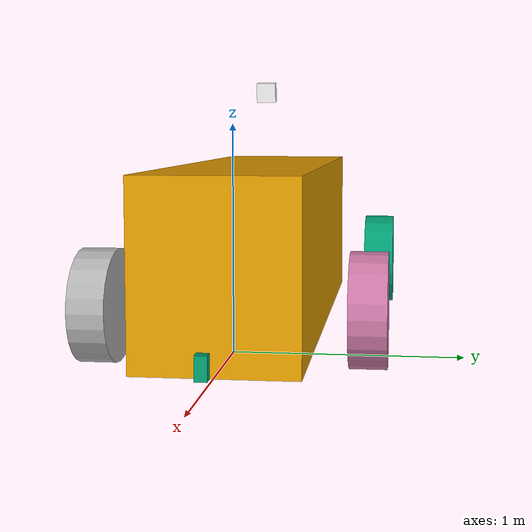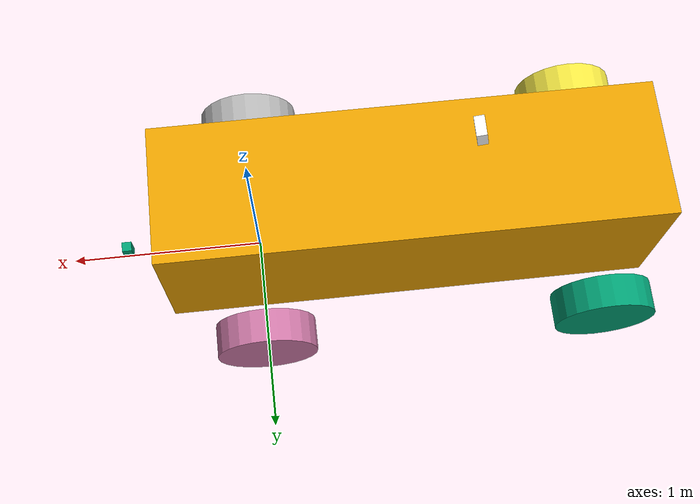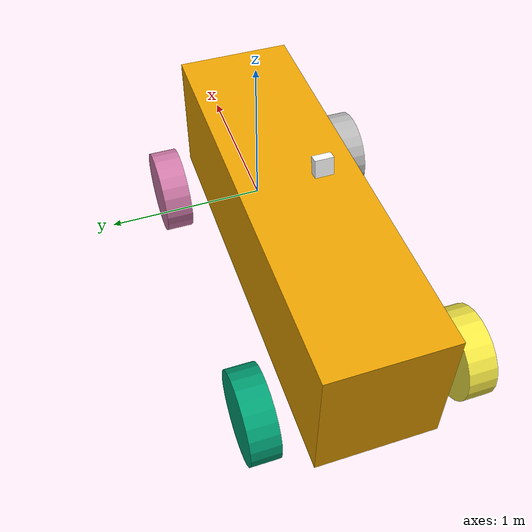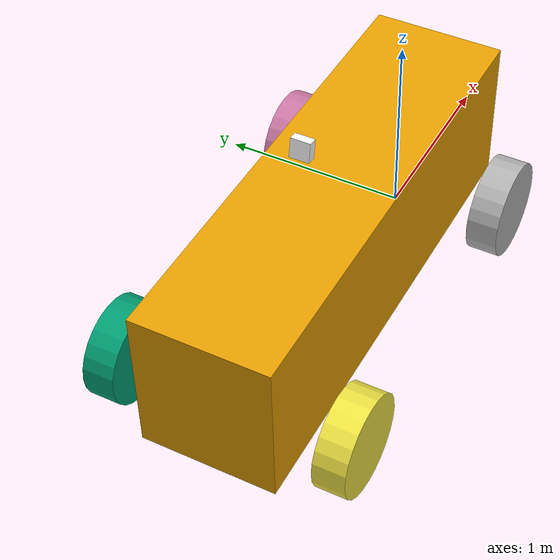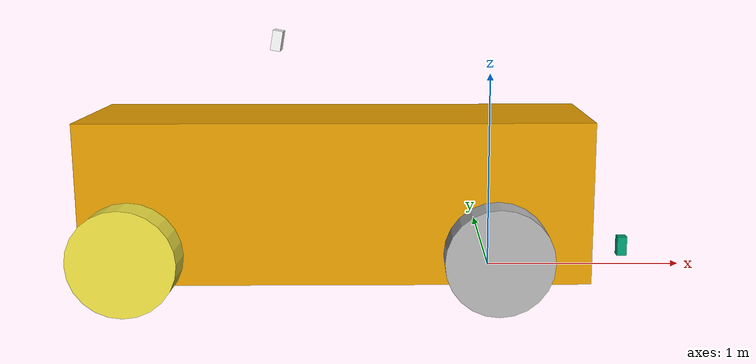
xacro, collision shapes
<?xml version="1.0"?>
<robot xmlns:xacro="http://www.ros.org/wiki/xacro" name="fs">

<!--    *Constants*    -->

<!-- These 2 values should always be modified in parallel with the ones in scripts/front_steer_akermann.py -->
<xacro:property name="axle_track" value="1.186" />
<xacro:property name="wheel_base" value="1.729" />

<xacro:property name="Chasis_mass" value="200" />
<xacro:property name="M_PI" value="3.1415926535897931" />
        <!--80 degrees fov, 21mm camera -->
<xacro:property name="Camera_field_of_view" value="80" />
<xacro:property name="Camera_image_width" value="640" />
<xacro:property name="Camera_image_height" value="480" />
        <!--In degrees measured from vertical -->
<xacro:property name="Camera_angle" value="10" />
        <!--Measured from base link, not from floor -->
<xacro:property name="Camera_height" value="1.17" />
<xacro:property name="Wheel_MU" value="0.9" />

<!--    *Colours*   -->

  <material name="grey">
    <color rgba="0.2 0.2 0.3 1"/>
  </material>

  <material name="white">
    <color rgba="1 1 1 1"/>
  </material>

  <material name="red">
    <color rgba="0.9 0.2 0.2 1"/>
  </material>

<!--    Base link (chassis) since Gazebo 9 this has no mass of its own, see dummy link -->

  <link name="base_link">
    <visual>
      <geometry>
        <!--box size="1.5 0.7 0.5"/-->
          <mesh filename="package://fs_simulator/meshes/Chasis.dae"/>
      </geometry>
    </visual>
    <collision>
      <origin rpy="0 0 0" xyz="-0.77 0 0.40"/>
      <geometry>
        <box size="2.5 0.7 0.8"/>
      </geometry>
    </collision>
  </link>
  <gazebo reference="base_link">
      <sensor type="contact" name="lside_bump_link">
        <always_on>true</always_on>
        <update_rate>50</update_rate>
        <contact>
          <collision>base_link_collision</collision>
          <!-- we have to add "_collision" to the colision link name due to a funny
          behaviour in urdf>sdf parser, Issue #113 in sdf bug tracker, major priority -->
        </contact>
        <plugin name="lside_bumper_plugin" filename="libgazebo_ros_bumper.so">
          <bumperTopicName>/fs/bumper</bumperTopicName>
          <frameName>world</frameName>
        </plugin>
      </sensor>
  </gazebo>

<!-- Dummy node, inertia for base link (chasis+batterypack+Motors) -->

<joint name="dummy_joint" type="fixed">
  <axis xyz="0 1 0" />
  <origin xyz="0 0 0" rpy="0 0 0"/>
  <parent link="base_link"/>
  <child link="dummy_link"/>
</joint>

<link name="dummy_link">
    <inertial>
      <origin rpy="0 0 0" xyz="-1.1 0 0.2"/>
      <mass value="${Chasis_mass}"/>
      <inertia ixx="11" ixy="0.0" ixz="0.0" iyy="106" iyz="0.0" izz="112"/>
    </inertial>
</link>

<!--    *Rear Wheels*   -->

<xacro:macro name="rWheel" params="prefix reflect">
  <link name="rear_${prefix}_wheel">
    <visual>
        <origin rpy="1.57075 0 0" xyz="0 0 0"/>
        <geometry>
          <!--cylinder length="0.164" radius="0.254"/-->
          <mesh filename="package://fs_simulator/meshes/tyre.dae"/>
        </geometry>
      <origin rpy="0 1.57075 0" xyz="0 0 -0.2"/>
    </visual>
    <collision>
      <origin rpy="1.57075 0 0" xyz="0 0 0"/>
      <geometry>
          <cylinder length="0.164" radius="0.254"/>
      </geometry>
    </collision>
    <inertial>
      <mass value="15.0"/>
      <inertia ixx="0.27" ixy="0.0" ixz="0.0" iyy="0.48" iyz="0.0" izz="0.27"/>
    </inertial>
  </link>

  <gazebo reference="rear_${prefix}_wheel">
      <mu1 value="${Wheel_MU}"/>
      <mu2 value="1.0"/>
      <kp value="10000000.0" />
      <kd value="1.0" />
  </gazebo>

  <joint name="base_to_${prefix}_wheel" type="continuous">
    <limit effort="2000" velocity="1000"/>
    <axis rpy="0 0 0" xyz="0 1 0"/>
    <parent link="base_link"/>
    <child link="rear_${prefix}_wheel"/>
    <origin rpy="0 0 0" xyz="${-wheel_base} ${reflect * axle_track /2} 0.2"/>
     <dynamics damping="0.3" friction="0.1"/>
  </joint>

  <transmission name="${prefix}_back_motor_trans">
    <type>transmission_interface/SimpleTransmission</type>
    <actuator name="${prefix}_back_motor_motor">
      <mechanicalReduction>1</mechanicalReduction>
    </actuator>
    <joint name="base_to_${prefix}_wheel">
      <hardwareInterface>hardware_interface/VelocityJointInterface</hardwareInterface>
    </joint>
  </transmission>
 </xacro:macro>
<xacro:rWheel prefix="right" reflect="1" />
<xacro:rWheel prefix="left" reflect="-1" />

<!--    Steer mechanism   -->

<xacro:macro name="steerMech" params="prefix reflect">

<link name="steer_${prefix}">
    <inertial>
        <mass value="2.0" />
        <inertia ixx="0.005" ixy="0.0" ixz="0.0"
            iyy="0.005" iyz="0.0"
            izz="0.005" />
    </inertial>
</link>

<joint name="base_to_${prefix}_front_steer" type="revolute">
    <axis xyz="0 0 1"/>
    <parent link="base_link"/>
    <child link="steer_${prefix}"/>
    <origin xyz="0 ${reflect * axle_track /2} 0"/>
    <dynamics damping="0.7" friction="0.7"/>
    <limit effort="173" lower="${-45*M_PI/180}" upper="${45*M_PI/180}" velocity="${M_PI*2*10}"/>
</joint>

<transmission name="${prefix}_front_steer_trans">
  <type>transmission_interface/SimpleTransmission</type>
  <actuator name="${prefix}_front_steer_motor">
    <mechanicalReduction>1</mechanicalReduction>
  </actuator>
  <joint name="base_to_${prefix}_front_steer">
    <hardwareInterface>hardware_interface/PositionJointInterface</hardwareInterface>
  </joint>
</transmission>

</xacro:macro>
<xacro:steerMech prefix="right" reflect="1" />
<xacro:steerMech prefix="left" reflect="-1" />

<!--  *Front Wheels*   -->

<xacro:macro name="fWheel" params="prefix reflect">

<link name="${prefix}_front_wheel">
  <visual>
      <origin rpy="1.57075 0 0" xyz="0 0 0"/>
      <geometry>
        <!--cylinder length="0.164" radius="0.254"/-->
        <mesh filename="package://fs_simulator/meshes/tyre.dae"/>
      </geometry>
  </visual>
  <collision>
    <origin rpy="1.57075 0 0" xyz="0 0 0"/>
    <geometry>
        <cylinder length="0.164" radius="0.254"/>
    </geometry>
  </collision>
  <inertial>
    <mass value="15.0"/>
    <inertia ixx="0.27" ixy="0.0" ixz="0.0" iyy="0.48" iyz="0.0" izz="0.27"/>
  </inertial>
</link>

<gazebo reference="${prefix}_front_wheel">
    <mu1 value="${Wheel_MU}"/>
    <mu2 value="1.0"/>
    <kp value="10000000.0" />
    <kd value="1.0" />
</gazebo>

<joint name="base_to_${prefix}_front_wheel" type="continuous">
  <axis  effort="1000.0" rpy="0 0 0" xyz="0 1 0"/>
  <parent link="steer_${prefix}"/>
  <child link="${prefix}_front_wheel"/>
  <origin rpy="0 0 0" xyz="0 0 0.2"/>
   <dynamics damping="0.3" friction="0.1"/>
</joint>

<transmission name="${prefix}_front_wheel_trans">
  <type>transmission_interface/SimpleTransmission</type>
  <actuator name="${prefix}_front_wheel_motor">
    <mechanicalReduction>1</mechanicalReduction>
  </actuator>
  <joint name="base_to_${prefix}_front_wheel">
    <hardwareInterface>hardware_interface/EffortJointInterface</hardwareInterface>
  </joint>
</transmission>

</xacro:macro>
<xacro:fWheel prefix="right" reflect="1" />
<xacro:fWheel prefix="left" reflect="-1" />

<!--    *Sensors*  -->

<!--    Camera 2d  -->

<joint name="camera_joint" type="fixed">
  <axis xyz="0 1 0"/>
  <origin xyz="-1.07 0 ${Camera_height}" rpy="0 ${Camera_angle*M_PI/180} 0"/>
  <parent link="base_link"/>
  <child link="camera_link"/>
</joint>

<link name="camera_link">
  <collision>
    <origin xyz="0 0 0" rpy="0 0 0"/>
    <geometry>
  <box size="0.05 0.1 0.1"/>
    </geometry>
  </collision>

  <visual>
    <origin xyz="0 0 0" rpy="0 0 0"/>
    <geometry>
  <box size="0.05 0.1 0.1"/>
    </geometry>
    <material name="white"/>
  </visual>

  <inertial>
    <mass value="1e-5" />
    <origin xyz="0 0 0" rpy="0 0 0"/>
    <inertia ixx="1e-6" ixy="0" ixz="0" iyy="1e-6" iyz="0" izz="1e-6" />
  </inertial>
</link>

  <gazebo reference="camera_link">
    <material>Gazebo/DarkGrey</material>
    <sensor type="camera" name="camera2d_1">
      <update_rate>10.0</update_rate>
      <camera name="head">
        <horizontal_fov>${Camera_field_of_view*M_PI/180}</horizontal_fov>
        <image>
          <width>${Camera_image_width}</width>
          <height>${Camera_image_height}</height>
          <format>R8G8B8</format>
        </image>
        <clip>
          <near>0.5</near>
          <far>50</far>
        </clip>
        <noise>
          <type>gaussian</type>
          <!-- Noise is sampled independently per pixel on each frame.
               That pixel's noise value is added to each of its color
               channels, which at that point lie in the range [0,1]. -->
          <mean>0.0</mean>
          <stddev>0.007</stddev>
        </noise>
      </camera>
      <plugin name="camera_controller" filename="libgazebo_ros_camera.so">
        <alwaysOn>true</alwaysOn>
        <updateRate>0.0</updateRate>
        <cameraName>fs/c1</cameraName>
        <imageTopicName>image_raw</imageTopicName>
        <cameraInfoTopicName>camera_info</cameraInfoTopicName>
        <frameName>camera_link</frameName>
        <hackBaseline>0.07</hackBaseline>
        <distortionK1>0.0</distortionK1>
        <distortionK2>0.0</distortionK2>
        <distortionK3>0.0</distortionK3>
        <distortionT1>0.0</distortionT1>
        <distortionT2>0.0</distortionT2>
      </plugin>
    </sensor>
  </gazebo>

<!--    Camera 3d  -->

<joint name="camera3d_joint" type="fixed">
  <axis xyz="0 1 0"/>
  <origin xyz="-1.07 0 ${Camera_height}" rpy="0 ${Camera_angle*M_PI/180} 0"/>
  <parent link="base_link"/>
  <child link="camera3d_link"/>
</joint>

<link name="camera3d_link">
  <collision>
    <origin xyz="0 0 0" rpy="0 0 0"/>
    <geometry>
  <box size="0.05 0.1 0.1"/>
    </geometry>
  </collision>

  <visual>
    <origin xyz="0 0 0" rpy="0 0 0"/>
    <geometry>
  <box size="0.05 0.1 0.1"/>
    </geometry>
    <material name="white"/>
  </visual>

  <inertial>
    <mass value="1e-5" />
    <origin xyz="0 0 0" rpy="0 0 0"/>
    <inertia ixx="1e-6" ixy="0" ixz="0" iyy="1e-6" iyz="0" izz="1e-6" />
  </inertial>
</link>

  <gazebo reference="camera3d_link">
    <material>Gazebo/DarkGrey</material>
    <sensor type="depth" name="camera3d_1">
      <update_rate>10.0</update_rate>
      <camera name="head">
        <horizontal_fov>${Camera_field_of_view*M_PI/180}</horizontal_fov>
        <image>
          <width>${Camera_image_width}</width>
          <height>${Camera_image_height}</height>
          <format>R8G8B8</format>
        </image>
        <clip>
          <near>0.5</near>
          <far>50</far>
        </clip>
      </camera>
        <plugin name="camera_plugin" filename="libgazebo_ros_openni_kinect.so">
          <baseline>0.2</baseline>
          <alwaysOn>true</alwaysOn>
          <updateRate>0.0</updateRate>
          <cameraName>camera_ir</cameraName>
          <imageTopicName>/camera/color/image_raw</imageTopicName>
          <cameraInfoTopicName>/camera/color/camera_info</cameraInfoTopicName>
          <depthImageTopicName>/camera/depth/image_raw</depthImageTopicName>
          <depthImageCameraInfoTopicName>/camera/depth/camera_info</depthImageCameraInfoTopicName>
          <pointCloudTopicName>/camera/depth/points</pointCloudTopicName>
          <frameName>camera3d_link</frameName>
          <pointCloudCutoff>0.5</pointCloudCutoff>
          <pointCloudCutoffMax>50.0</pointCloudCutoffMax>
          <distortionK1>0</distortionK1>
          <distortionK2>0</distortionK2>
          <distortionK3>0</distortionK3>
          <distortionT1>0</distortionT1>
          <distortionT2>0</distortionT2>
          <CxPrime>0</CxPrime>
          <Cx>0</Cx>
          <Cy>0</Cy>
          <focalLength>0</focalLength>
          <hackBaseline>0</hackBaseline>
        </plugin>
    </sensor>
  </gazebo>

<!--    LiDar Hokuyo   -->

<joint name="hokuyo_joint" type="fixed">
  <axis xyz="0 1 0" />
  <origin xyz="0.7 0 0.1" rpy="0 0 0"/>
  <parent link="base_link"/>
  <child link="hokuyo_link"/>
</joint>

<link name="hokuyo_link">
  <collision>
    <origin xyz="0 0 0" rpy="0 0 0"/>
    <geometry>
  <box size="0.05 0.05 0.1"/>
    </geometry>
  </collision>

  <visual>
    <origin xyz="0 0 0" rpy="0 0 0"/>
    <geometry>
      <mesh filename="package://fs_simulator/meshes/hokuyo.dae"/>
    </geometry>
  </visual>

  <inertial>
    <mass value="1e-5" />
    <origin xyz="0 0 0" rpy="0 0 0"/>
    <inertia ixx="1e-6" ixy="0" ixz="0" iyy="1e-6" iyz="0" izz="1e-6" />
  </inertial>
</link>

  <gazebo reference="hokuyo_link">
    <sensor type="ray" name="head_hokuyo_sensor">
      <pose>0 0 0 0 0 0</pose>
      <visualize>false</visualize>
      <update_rate>20</update_rate>
      <ray>
        <scan>
          <horizontal>
            <samples>720</samples>
            <resolution>1</resolution>
            <min_angle>-1.570796</min_angle>
            <max_angle>1.570796</max_angle>
          </horizontal>
        </scan>
        <range>
          <min>0.1</min>
          <max>30.0</max>
          <resolution>0.01</resolution>
        </range>
        <noise>
          <type>gaussian</type>
          <mean>0.0</mean>
          <stddev>0.01</stddev>
        </noise>
      </ray>
      <plugin name="gazebo_ros_head_hokuyo_controller" filename="libgazebo_ros_laser.so">
        <topicName>/fs/laser/scan</topicName>
        <frameName>hokuyo_link</frameName>
      </plugin>
    </sensor>
  </gazebo>

<gazebo reference="hokuyo_link">
  <sensor type="ray" name="head_hokuyo_sensor">
    <pose>0 0 0 0 0 0</pose>
    <visualize>false</visualize>
    <update_rate>20</update_rate>
    <ray>
      <scan>
        <horizontal>
          <samples>720</samples>
          <resolution>1</resolution>
          <min_angle>-1.570796</min_angle>
          <max_angle>1.570796</max_angle>
        </horizontal>
      </scan>
      <range>
        <min>0.1</min>
        <max>30.0</max>
        <resolution>0.01</resolution>
      </range>
      <noise>
        <type>gaussian</type>
        <mean>0.0</mean>
        <stddev>0.01</stddev>
      </noise>
    </ray>
    <plugin name="gazebo_ros_head_hokuyo_controller" filename="libgazebo_ros_laser.so">
      <topicName>/fs/laser/scan</topicName>
      <frameName>hokuyo_link</frameName>
    </plugin>
  </sensor>
</gazebo>

<!--    IMU   -->

<joint name="IMU_joint" type="fixed">
  <axis xyz="1 0 0"/>
  <origin xyz="-.5 0 0.1"/>
  <parent link="base_link"/>
  <child link="IMU_link"/>
</joint>

<link name="IMU_link">
<inertial>
  <mass value="0.05"/>
  <origin rpy="0 0 0" xyz="0 0 0"/>
  <inertia ixx="0.00001" ixy="0" ixz="0" iyy="0.00001" iyz="0" izz="0.00001"/>
</inertial>
<visual>
  <origin rpy="0 0 0" xyz="0 0 0"/>
  <geometry>
    <box size="0.01 0.01 0.01"/>
  </geometry>
</visual>
<collision>
  <origin rpy="0 0 0" xyz="0 0 0"/>
  <geometry>
    <box size="0.01 0.01 0.01"/>
  </geometry>
</collision>
</link>

<gazebo>
  <plugin name="imu_plugin" filename="libgazebo_ros_imu.so">
    <alwaysOn>true</alwaysOn>
    <bodyName>IMU_link</bodyName>
    <topicName>fs/imu_data</topicName>
    <serviceName>imu_service</serviceName>
    <gaussianNoise>8.0e-03</gaussianNoise>
    <updateRate>50.0</updateRate>
  </plugin>
</gazebo>

<!--    Gazebo Plugin  -->

    <gazebo>
      <plugin name="gazebo_ros_control" filename="libgazebo_ros_control.so">
        <robotNamespace>/</robotNamespace>
        <!--    TODO: (gtorre) research why we have to use lagacy mode   -->
        <legacyModeNS>true</legacyModeNS>
      </plugin>
    </gazebo>
</robot>
